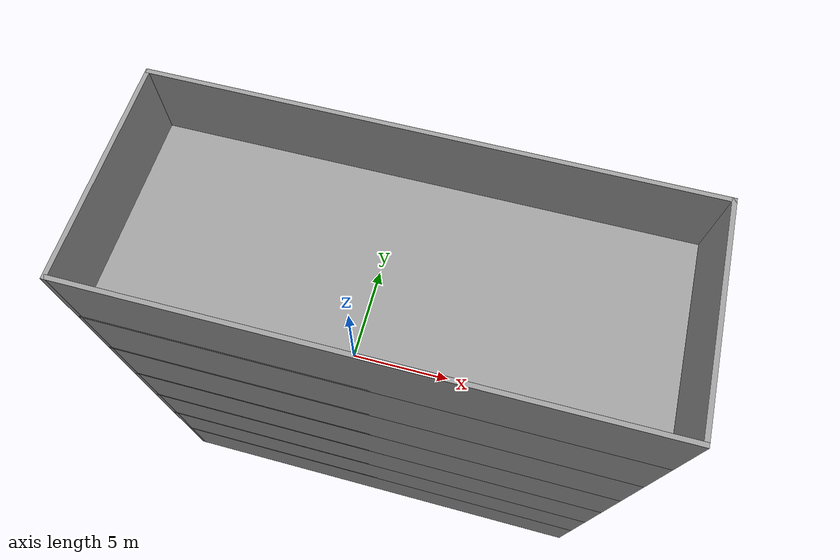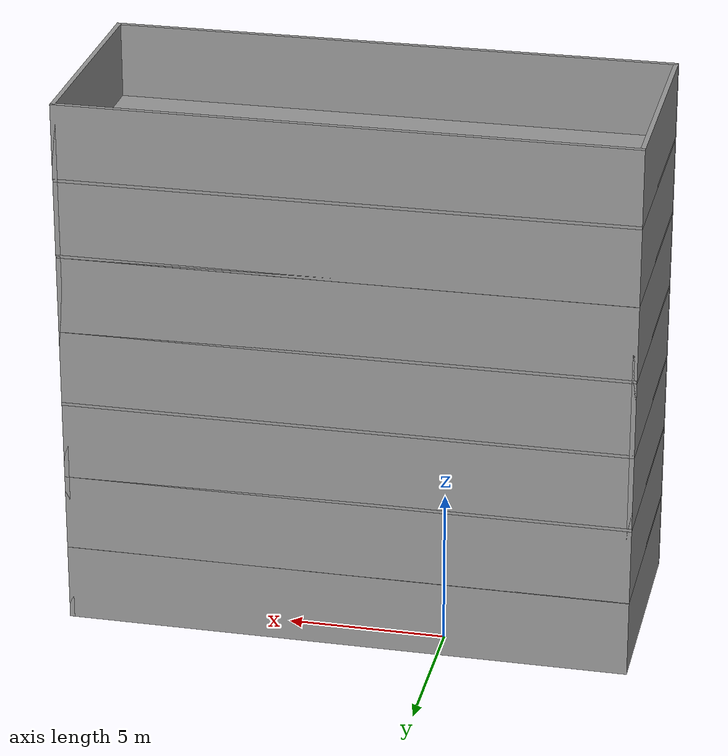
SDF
<?xml version='1.0'?>
<sdf version='1.7'>
  <model name='lab6_task1_world'>
    <pose>2.99344 -2.60477 0 0 -0 0</pose>
    <link name='Floor_10'>
      <collision name='Floor_10_Collision'>
        <geometry>
          <box>
            <size>18 7.5 0.1</size>
          </box>
        </geometry>
        <pose>0 0 0.05 0 -0 0</pose>
      </collision>
      <visual name='Floor_10_Visual'>
        <pose>0 0 0.05 0 -0 0</pose>
        <geometry>
          <box>
            <size>18 7.5 0.1</size>
          </box>
        </geometry>
        <material>
          <script>
            <uri>file://media/materials/scripts/gazebo.material</uri>
            <name>Gazebo/Grey</name>
          </script>
          <ambient>1 1 1 1</ambient>
        </material>
        <meta>
          <layer>6</layer>
        </meta>
      </visual>
      <pose>-0 0 15 0 -0 0</pose>
    </link>
    <link name='Floor_5'>
      <collision name='Floor_5_Collision'>
        <geometry>
          <box>
            <size>18 7.5 0.1</size>
          </box>
        </geometry>
        <pose>0 0 0.05 0 -0 0</pose>
      </collision>
      <visual name='Floor_5_Visual'>
        <pose>0 0 0.05 0 -0 0</pose>
        <geometry>
          <box>
            <size>18 7.5 0.1</size>
          </box>
        </geometry>
        <material>
          <script>
            <uri>file://media/materials/scripts/gazebo.material</uri>
            <name>Gazebo/Grey</name>
          </script>
          <ambient>1 1 1 1</ambient>
        </material>
        <meta>
          <layer>1</layer>
        </meta>
      </visual>
      <pose>-0 0 2.5 0 -0 0</pose>
    </link>
    <link name='Floor_6'>
      <collision name='Floor_6_Collision'>
        <geometry>
          <box>
            <size>18 7.5 0.1</size>
          </box>
        </geometry>
        <pose>0 0 0.05 0 -0 0</pose>
      </collision>
      <visual name='Floor_6_Visual'>
        <pose>0 0 0.05 0 -0 0</pose>
        <geometry>
          <box>
            <size>18 7.5 0.1</size>
          </box>
        </geometry>
        <material>
          <script>
            <uri>file://media/materials/scripts/gazebo.material</uri>
            <name>Gazebo/Grey</name>
          </script>
          <ambient>1 1 1 1</ambient>
        </material>
        <meta>
          <layer>2</layer>
        </meta>
      </visual>
      <pose>-0 0 5 0 -0 0</pose>
    </link>
    <link name='Floor_7'>
      <collision name='Floor_7_Collision'>
        <geometry>
          <box>
            <size>18 7.5 0.1</size>
          </box>
        </geometry>
        <pose>0 0 0.05 0 -0 0</pose>
      </collision>
      <visual name='Floor_7_Visual'>
        <pose>0 0 0.05 0 -0 0</pose>
        <geometry>
          <box>
            <size>18 7.5 0.1</size>
          </box>
        </geometry>
        <material>
          <script>
            <uri>file://media/materials/scripts/gazebo.material</uri>
            <name>Gazebo/Grey</name>
          </script>
          <ambient>1 1 1 1</ambient>
        </material>
        <meta>
          <layer>3</layer>
        </meta>
      </visual>
      <pose>-0 0 7.5 0 -0 0</pose>
    </link>
    <link name='Floor_8'>
      <collision name='Floor_8_Collision'>
        <geometry>
          <box>
            <size>18 7.5 0.1</size>
          </box>
        </geometry>
        <pose>0 0 0.05 0 -0 0</pose>
      </collision>
      <visual name='Floor_8_Visual'>
        <pose>0 0 0.05 0 -0 0</pose>
        <geometry>
          <box>
            <size>18 7.5 0.1</size>
          </box>
        </geometry>
        <material>
          <script>
            <uri>file://media/materials/scripts/gazebo.material</uri>
            <name>Gazebo/Grey</name>
          </script>
          <ambient>1 1 1 1</ambient>
        </material>
        <meta>
          <layer>4</layer>
        </meta>
      </visual>
      <pose>-0 0 10 0 -0 0</pose>
    </link>
    <link name='Floor_9'>
      <collision name='Floor_9_Collision'>
        <geometry>
          <box>
            <size>18 7.5 0.1</size>
          </box>
        </geometry>
        <pose>0 0 0.05 0 -0 0</pose>
      </collision>
      <visual name='Floor_9_Visual'>
        <pose>0 0 0.05 0 -0 0</pose>
        <geometry>
          <box>
            <size>18 7.5 0.1</size>
          </box>
        </geometry>
        <material>
          <script>
            <uri>file://media/materials/scripts/gazebo.material</uri>
            <name>Gazebo/Grey</name>
          </script>
          <ambient>1 1 1 1</ambient>
        </material>
        <meta>
          <layer>5</layer>
        </meta>
      </visual>
      <pose>-0 0 12.5 0 -0 0</pose>
    </link>
    <link name='Wall_10'>
      <collision name='Wall_10_Collision'>
        <geometry>
          <box>
            <size>7.5 0.15 2.5</size>
          </box>
        </geometry>
        <pose>0 0 1.25 0 -0 0</pose>
      </collision>
      <visual name='Wall_10_Visual'>
        <pose>0 0 1.25 0 -0 0</pose>
        <geometry>
          <box>
            <size>7.5 0.15 2.5</size>
          </box>
        </geometry>
        <material>
          <script>
            <uri>file://media/materials/scripts/gazebo.material</uri>
            <name>Gazebo/Grey</name>
          </script>
          <ambient>1 1 1 1</ambient>
        </material>
        <meta>
          <layer>0</layer>
        </meta>
      </visual>
      <pose>-8.925 -0 0 0 -0 1.5708</pose>
    </link>
    <link name='Wall_3'>
      <collision name='Wall_3_Collision'>
        <geometry>
          <box>
            <size>0.16 0.15 2.5</size>
          </box>
        </geometry>
        <pose>0 0 1.25 0 -0 0</pose>
      </collision>
      <visual name='Wall_3_Visual'>
        <pose>0 0 1.25 0 -0 0</pose>
        <geometry>
          <box>
            <size>0.16 0.15 2.5</size>
          </box>
        </geometry>
        <material>
          <script>
            <uri>file://media/materials/scripts/gazebo.material</uri>
            <name>Gazebo/Grey</name>
          </script>
          <ambient>0 0 0 1</ambient>
        </material>
        <meta>
          <layer>0</layer>
        </meta>
      </visual>
      <pose>-1.83214 1.01301 0 0 -0 0</pose>
    </link>
    <link name='Wall_32'>
      <collision name='Wall_32_Collision'>
        <geometry>
          <box>
            <size>18 0.15 2.5</size>
          </box>
        </geometry>
        <pose>0 0 1.25 0 -0 0</pose>
      </collision>
      <visual name='Wall_32_Visual'>
        <pose>0 0 1.25 0 -0 0</pose>
        <geometry>
          <box>
            <size>18 0.15 2.5</size>
          </box>
        </geometry>
        <material>
          <script>
            <uri>file://media/materials/scripts/gazebo.material</uri>
            <name>Gazebo/Grey</name>
          </script>
          <ambient>1 1 1 1</ambient>
        </material>
        <meta>
          <layer>1</layer>
        </meta>
      </visual>
      <pose>-0 3.675 2.5 0 -0 0</pose>
    </link>
    <link name='Wall_33'>
      <collision name='Wall_33_Collision'>
        <geometry>
          <box>
            <size>7.5 0.15 2.5</size>
          </box>
        </geometry>
        <pose>0 0 1.25 0 -0 0</pose>
      </collision>
      <visual name='Wall_33_Visual'>
        <pose>0 0 1.25 0 -0 0</pose>
        <geometry>
          <box>
            <size>7.5 0.15 2.5</size>
          </box>
        </geometry>
        <material>
          <script>
            <uri>file://media/materials/scripts/gazebo.material</uri>
            <name>Gazebo/Grey</name>
          </script>
          <ambient>1 1 1 1</ambient>
        </material>
        <meta>
          <layer>1</layer>
        </meta>
      </visual>
      <pose>8.925 0 2.5 0 -0 -1.5708</pose>
    </link>
    <link name='Wall_34'>
      <collision name='Wall_34_Collision'>
        <geometry>
          <box>
            <size>18 0.15 2.5</size>
          </box>
        </geometry>
        <pose>0 0 1.25 0 -0 0</pose>
      </collision>
      <visual name='Wall_34_Visual'>
        <pose>0 0 1.25 0 -0 0</pose>
        <geometry>
          <box>
            <size>18 0.15 2.5</size>
          </box>
        </geometry>
        <material>
          <script>
            <uri>file://media/materials/scripts/gazebo.material</uri>
            <name>Gazebo/Grey</name>
          </script>
          <ambient>1 1 1 1</ambient>
        </material>
        <meta>
          <layer>1</layer>
        </meta>
      </visual>
      <pose>-0 -3.675 2.5 0 -0 3.14159</pose>
    </link>
    <link name='Wall_35'>
      <collision name='Wall_35_Collision'>
        <geometry>
          <box>
            <size>7.5 0.15 2.5</size>
          </box>
        </geometry>
        <pose>0 0 1.25 0 -0 0</pose>
      </collision>
      <visual name='Wall_35_Visual'>
        <pose>0 0 1.25 0 -0 0</pose>
        <geometry>
          <box>
            <size>7.5 0.15 2.5</size>
          </box>
        </geometry>
        <material>
          <script>
            <uri>file://media/materials/scripts/gazebo.material</uri>
            <name>Gazebo/Grey</name>
          </script>
          <ambient>1 1 1 1</ambient>
        </material>
        <meta>
          <layer>1</layer>
        </meta>
      </visual>
      <pose>-8.925 0 2.5 0 -0 1.5708</pose>
    </link>
    <link name='Wall_36'>
      <collision name='Wall_36_Collision'>
        <geometry>
          <box>
            <size>18 0.15 2.5</size>
          </box>
        </geometry>
        <pose>0 0 1.25 0 -0 0</pose>
      </collision>
      <visual name='Wall_36_Visual'>
        <pose>0 0 1.25 0 -0 0</pose>
        <geometry>
          <box>
            <size>18 0.15 2.5</size>
          </box>
        </geometry>
        <material>
          <script>
            <uri>file://media/materials/scripts/gazebo.material</uri>
            <name>Gazebo/Grey</name>
          </script>
          <ambient>1 1 1 1</ambient>
        </material>
        <meta>
          <layer>2</layer>
        </meta>
      </visual>
      <pose>-0 3.675 5 0 -0 0</pose>
    </link>
    <link name='Wall_37'>
      <collision name='Wall_37_Collision'>
        <geometry>
          <box>
            <size>7.5 0.15 2.5</size>
          </box>
        </geometry>
        <pose>0 0 1.25 0 -0 0</pose>
      </collision>
      <visual name='Wall_37_Visual'>
        <pose>0 0 1.25 0 -0 0</pose>
        <geometry>
          <box>
            <size>7.5 0.15 2.5</size>
          </box>
        </geometry>
        <material>
          <script>
            <uri>file://media/materials/scripts/gazebo.material</uri>
            <name>Gazebo/Grey</name>
          </script>
          <ambient>1 1 1 1</ambient>
        </material>
        <meta>
          <layer>2</layer>
        </meta>
      </visual>
      <pose>8.925 0 5 0 -0 -1.5708</pose>
    </link>
    <link name='Wall_38'>
      <collision name='Wall_38_Collision'>
        <geometry>
          <box>
            <size>18 0.15 2.5</size>
          </box>
        </geometry>
        <pose>0 0 1.25 0 -0 0</pose>
      </collision>
      <visual name='Wall_38_Visual'>
        <pose>0 0 1.25 0 -0 0</pose>
        <geometry>
          <box>
            <size>18 0.15 2.5</size>
          </box>
        </geometry>
        <material>
          <script>
            <uri>file://media/materials/scripts/gazebo.material</uri>
            <name>Gazebo/Grey</name>
          </script>
          <ambient>1 1 1 1</ambient>
        </material>
        <meta>
          <layer>2</layer>
        </meta>
      </visual>
      <pose>-0 -3.675 5 0 -0 3.14159</pose>
    </link>
    <link name='Wall_39'>
      <collision name='Wall_39_Collision'>
        <geometry>
          <box>
            <size>7.5 0.15 2.5</size>
          </box>
        </geometry>
        <pose>0 0 1.25 0 -0 0</pose>
      </collision>
      <visual name='Wall_39_Visual'>
        <pose>0 0 1.25 0 -0 0</pose>
        <geometry>
          <box>
            <size>7.5 0.15 2.5</size>
          </box>
        </geometry>
        <material>
          <script>
            <uri>file://media/materials/scripts/gazebo.material</uri>
            <name>Gazebo/Grey</name>
          </script>
          <ambient>1 1 1 1</ambient>
        </material>
        <meta>
          <layer>2</layer>
        </meta>
      </visual>
      <pose>-8.925 0 5 0 -0 1.5708</pose>
    </link>
    <link name='Wall_40'>
      <collision name='Wall_40_Collision'>
        <geometry>
          <box>
            <size>18 0.15 2.5</size>
          </box>
        </geometry>
        <pose>0 0 1.25 0 -0 0</pose>
      </collision>
      <visual name='Wall_40_Visual'>
        <pose>0 0 1.25 0 -0 0</pose>
        <geometry>
          <box>
            <size>18 0.15 2.5</size>
          </box>
        </geometry>
        <material>
          <script>
            <uri>file://media/materials/scripts/gazebo.material</uri>
            <name>Gazebo/Grey</name>
          </script>
          <ambient>1 1 1 1</ambient>
        </material>
        <meta>
          <layer>3</layer>
        </meta>
      </visual>
      <pose>-0 3.675 7.5 0 -0 0</pose>
    </link>
    <link name='Wall_41'>
      <collision name='Wall_41_Collision'>
        <geometry>
          <box>
            <size>7.5 0.15 2.5</size>
          </box>
        </geometry>
        <pose>0 0 1.25 0 -0 0</pose>
      </collision>
      <visual name='Wall_41_Visual'>
        <pose>0 0 1.25 0 -0 0</pose>
        <geometry>
          <box>
            <size>7.5 0.15 2.5</size>
          </box>
        </geometry>
        <material>
          <script>
            <uri>file://media/materials/scripts/gazebo.material</uri>
            <name>Gazebo/Grey</name>
          </script>
          <ambient>1 1 1 1</ambient>
        </material>
        <meta>
          <layer>3</layer>
        </meta>
      </visual>
      <pose>8.925 0 7.5 0 -0 -1.5708</pose>
    </link>
    <link name='Wall_42'>
      <collision name='Wall_42_Collision'>
        <geometry>
          <box>
            <size>18 0.15 2.5</size>
          </box>
        </geometry>
        <pose>0 0 1.25 0 -0 0</pose>
      </collision>
      <visual name='Wall_42_Visual'>
        <pose>0 0 1.25 0 -0 0</pose>
        <geometry>
          <box>
            <size>18 0.15 2.5</size>
          </box>
        </geometry>
        <material>
          <script>
            <uri>file://media/materials/scripts/gazebo.material</uri>
            <name>Gazebo/Grey</name>
          </script>
          <ambient>1 1 1 1</ambient>
        </material>
        <meta>
          <layer>3</layer>
        </meta>
      </visual>
      <pose>-0 -3.675 7.5 0 -0 3.14159</pose>
    </link>
    <link name='Wall_43'>
      <collision name='Wall_43_Collision'>
        <geometry>
          <box>
            <size>7.5 0.15 2.5</size>
          </box>
        </geometry>
        <pose>0 0 1.25 0 -0 0</pose>
      </collision>
      <visual name='Wall_43_Visual'>
        <pose>0 0 1.25 0 -0 0</pose>
        <geometry>
          <box>
            <size>7.5 0.15 2.5</size>
          </box>
        </geometry>
        <material>
          <script>
            <uri>file://media/materials/scripts/gazebo.material</uri>
            <name>Gazebo/Grey</name>
          </script>
          <ambient>1 1 1 1</ambient>
        </material>
        <meta>
          <layer>3</layer>
        </meta>
      </visual>
      <pose>-8.925 0 7.5 0 -0 1.5708</pose>
    </link>
    <link name='Wall_44'>
      <collision name='Wall_44_Collision'>
        <geometry>
          <box>
            <size>18 0.15 2.5</size>
          </box>
        </geometry>
        <pose>0 0 1.25 0 -0 0</pose>
      </collision>
      <visual name='Wall_44_Visual'>
        <pose>0 0 1.25 0 -0 0</pose>
        <geometry>
          <box>
            <size>18 0.15 2.5</size>
          </box>
        </geometry>
        <material>
          <script>
            <uri>file://media/materials/scripts/gazebo.material</uri>
            <name>Gazebo/Grey</name>
          </script>
          <ambient>1 1 1 1</ambient>
        </material>
        <meta>
          <layer>4</layer>
        </meta>
      </visual>
      <pose>-0 3.675 10 0 -0 0</pose>
    </link>
    <link name='Wall_45'>
      <collision name='Wall_45_Collision'>
        <geometry>
          <box>
            <size>7.5 0.15 2.5</size>
          </box>
        </geometry>
        <pose>0 0 1.25 0 -0 0</pose>
      </collision>
      <visual name='Wall_45_Visual'>
        <pose>0 0 1.25 0 -0 0</pose>
        <geometry>
          <box>
            <size>7.5 0.15 2.5</size>
          </box>
        </geometry>
        <material>
          <script>
            <uri>file://media/materials/scripts/gazebo.material</uri>
            <name>Gazebo/Grey</name>
          </script>
          <ambient>1 1 1 1</ambient>
        </material>
        <meta>
          <layer>4</layer>
        </meta>
      </visual>
      <pose>8.925 0 10 0 -0 -1.5708</pose>
    </link>
    <link name='Wall_46'>
      <collision name='Wall_46_Collision'>
        <geometry>
          <box>
            <size>18 0.15 2.5</size>
          </box>
        </geometry>
        <pose>0 0 1.25 0 -0 0</pose>
      </collision>
      <visual name='Wall_46_Visual'>
        <pose>0 0 1.25 0 -0 0</pose>
        <geometry>
          <box>
            <size>18 0.15 2.5</size>
          </box>
        </geometry>
        <material>
          <script>
            <uri>file://media/materials/scripts/gazebo.material</uri>
            <name>Gazebo/Grey</name>
          </script>
          <ambient>1 1 1 1</ambient>
        </material>
        <meta>
          <layer>4</layer>
        </meta>
      </visual>
      <pose>-0 -3.675 10 0 -0 3.14159</pose>
    </link>
    <link name='Wall_47'>
      <collision name='Wall_47_Collision'>
        <geometry>
          <box>
            <size>7.5 0.15 2.5</size>
          </box>
        </geometry>
        <pose>0 0 1.25 0 -0 0</pose>
      </collision>
      <visual name='Wall_47_Visual'>
        <pose>0 0 1.25 0 -0 0</pose>
        <geometry>
          <box>
            <size>7.5 0.15 2.5</size>
          </box>
        </geometry>
        <material>
          <script>
            <uri>file://media/materials/scripts/gazebo.material</uri>
            <name>Gazebo/Grey</name>
          </script>
          <ambient>1 1 1 1</ambient>
        </material>
        <meta>
          <layer>4</layer>
        </meta>
      </visual>
      <pose>-8.925 0 10 0 -0 1.5708</pose>
    </link>
    <link name='Wall_48'>
      <collision name='Wall_48_Collision'>
        <geometry>
          <box>
            <size>18 0.15 2.5</size>
          </box>
        </geometry>
        <pose>0 0 1.25 0 -0 0</pose>
      </collision>
      <visual name='Wall_48_Visual'>
        <pose>0 0 1.25 0 -0 0</pose>
        <geometry>
          <box>
            <size>18 0.15 2.5</size>
          </box>
        </geometry>
        <material>
          <script>
            <uri>file://media/materials/scripts/gazebo.material</uri>
            <name>Gazebo/Grey</name>
          </script>
          <ambient>1 1 1 1</ambient>
        </material>
        <meta>
          <layer>5</layer>
        </meta>
      </visual>
      <pose>-0 3.675 12.5 0 -0 0</pose>
    </link>
    <link name='Wall_49'>
      <collision name='Wall_49_Collision'>
        <geometry>
          <box>
            <size>7.5 0.15 2.5</size>
          </box>
        </geometry>
        <pose>0 0 1.25 0 -0 0</pose>
      </collision>
      <visual name='Wall_49_Visual'>
        <pose>0 0 1.25 0 -0 0</pose>
        <geometry>
          <box>
            <size>7.5 0.15 2.5</size>
          </box>
        </geometry>
        <material>
          <script>
            <uri>file://media/materials/scripts/gazebo.material</uri>
            <name>Gazebo/Grey</name>
          </script>
          <ambient>1 1 1 1</ambient>
        </material>
        <meta>
          <layer>5</layer>
        </meta>
      </visual>
      <pose>8.925 0 12.5 0 -0 -1.5708</pose>
    </link>
    <link name='Wall_5'>
      <collision name='Wall_5_Collision'>
        <geometry>
          <box>
            <size>18 0.15 2.5</size>
          </box>
        </geometry>
        <pose>0 0 1.25 0 -0 0</pose>
      </collision>
      <visual name='Wall_5_Visual'>
        <pose>0 0 1.25 0 -0 0</pose>
        <geometry>
          <box>
            <size>18 0.15 2.5</size>
          </box>
        </geometry>
        <material>
          <script>
            <uri>file://media/materials/scripts/gazebo.material</uri>
            <name>Gazebo/Grey</name>
          </script>
          <ambient>1 1 1 1</ambient>
        </material>
        <meta>
          <layer>0</layer>
        </meta>
      </visual>
      <pose>-0 3.675 0 0 -0 0</pose>
    </link>
    <link name='Wall_50'>
      <collision name='Wall_50_Collision'>
        <geometry>
          <box>
            <size>18 0.15 2.5</size>
          </box>
        </geometry>
        <pose>0 0 1.25 0 -0 0</pose>
      </collision>
      <visual name='Wall_50_Visual'>
        <pose>0 0 1.25 0 -0 0</pose>
        <geometry>
          <box>
            <size>18 0.15 2.5</size>
          </box>
        </geometry>
        <material>
          <script>
            <uri>file://media/materials/scripts/gazebo.material</uri>
            <name>Gazebo/Grey</name>
          </script>
          <ambient>1 1 1 1</ambient>
        </material>
        <meta>
          <layer>5</layer>
        </meta>
      </visual>
      <pose>-0 -3.675 12.5 0 -0 3.14159</pose>
    </link>
    <link name='Wall_51'>
      <collision name='Wall_51_Collision'>
        <geometry>
          <box>
            <size>7.5 0.15 2.5</size>
          </box>
        </geometry>
        <pose>0 0 1.25 0 -0 0</pose>
      </collision>
      <visual name='Wall_51_Visual'>
        <pose>0 0 1.25 0 -0 0</pose>
        <geometry>
          <box>
            <size>7.5 0.15 2.5</size>
          </box>
        </geometry>
        <material>
          <script>
            <uri>file://media/materials/scripts/gazebo.material</uri>
            <name>Gazebo/Grey</name>
          </script>
          <ambient>1 1 1 1</ambient>
        </material>
        <meta>
          <layer>5</layer>
        </meta>
      </visual>
      <pose>-8.925 0 12.5 0 -0 1.5708</pose>
    </link>
    <link name='Wall_52'>
      <collision name='Wall_52_Collision'>
        <geometry>
          <box>
            <size>18 0.15 2.5</size>
          </box>
        </geometry>
        <pose>0 0 1.25 0 -0 0</pose>
      </collision>
      <visual name='Wall_52_Visual'>
        <pose>0 0 1.25 0 -0 0</pose>
        <geometry>
          <box>
            <size>18 0.15 2.5</size>
          </box>
        </geometry>
        <material>
          <script>
            <uri>file://media/materials/scripts/gazebo.material</uri>
            <name>Gazebo/Grey</name>
          </script>
          <ambient>1 1 1 1</ambient>
        </material>
        <meta>
          <layer>6</layer>
        </meta>
      </visual>
      <pose>-0 3.675 15 0 -0 0</pose>
    </link>
    <link name='Wall_53'>
      <collision name='Wall_53_Collision'>
        <geometry>
          <box>
            <size>7.5 0.15 2.5</size>
          </box>
        </geometry>
        <pose>0 0 1.25 0 -0 0</pose>
      </collision>
      <visual name='Wall_53_Visual'>
        <pose>0 0 1.25 0 -0 0</pose>
        <geometry>
          <box>
            <size>7.5 0.15 2.5</size>
          </box>
        </geometry>
        <material>
          <script>
            <uri>file://media/materials/scripts/gazebo.material</uri>
            <name>Gazebo/Grey</name>
          </script>
          <ambient>1 1 1 1</ambient>
        </material>
        <meta>
          <layer>6</layer>
        </meta>
      </visual>
      <pose>8.925 0 15 0 -0 -1.5708</pose>
    </link>
    <link name='Wall_54'>
      <collision name='Wall_54_Collision'>
        <geometry>
          <box>
            <size>18 0.15 2.5</size>
          </box>
        </geometry>
        <pose>0 0 1.25 0 -0 0</pose>
      </collision>
      <visual name='Wall_54_Visual'>
        <pose>0 0 1.25 0 -0 0</pose>
        <geometry>
          <box>
            <size>18 0.15 2.5</size>
          </box>
        </geometry>
        <material>
          <script>
            <uri>file://media/materials/scripts/gazebo.material</uri>
            <name>Gazebo/Grey</name>
          </script>
          <ambient>1 1 1 1</ambient>
        </material>
        <meta>
          <layer>6</layer>
        </meta>
      </visual>
      <pose>-0 -3.675 15 0 -0 3.14159</pose>
    </link>
    <link name='Wall_55'>
      <collision name='Wall_55_Collision'>
        <geometry>
          <box>
            <size>7.5 0.15 2.5</size>
          </box>
        </geometry>
        <pose>0 0 1.25 0 -0 0</pose>
      </collision>
      <visual name='Wall_55_Visual'>
        <pose>0 0 1.25 0 -0 0</pose>
        <geometry>
          <box>
            <size>7.5 0.15 2.5</size>
          </box>
        </geometry>
        <material>
          <script>
            <uri>file://media/materials/scripts/gazebo.material</uri>
            <name>Gazebo/Grey</name>
          </script>
          <ambient>1 1 1 1</ambient>
        </material>
        <meta>
          <layer>6</layer>
        </meta>
      </visual>
      <pose>-8.925 0 15 0 -0 1.5708</pose>
    </link>
    <link name='Wall_8'>
      <collision name='Wall_8_Collision'>
        <geometry>
          <box>
            <size>7.5 0.15 2.5</size>
          </box>
        </geometry>
        <pose>0 0 1.25 0 -0 0</pose>
      </collision>
      <visual name='Wall_8_Visual'>
        <pose>0 0 1.25 0 -0 0</pose>
        <geometry>
          <box>
            <size>7.5 0.15 2.5</size>
          </box>
        </geometry>
        <material>
          <script>
            <uri>file://media/materials/scripts/gazebo.material</uri>
            <name>Gazebo/Grey</name>
          </script>
          <ambient>1 1 1 1</ambient>
        </material>
        <meta>
          <layer>0</layer>
        </meta>
      </visual>
      <pose>8.925 -0 0 0 -0 -1.5708</pose>
    </link>
    <link name='Wall_9'>
      <collision name='Wall_9_Collision'>
        <geometry>
          <box>
            <size>18 0.15 2.5</size>
          </box>
        </geometry>
        <pose>0 0 1.25 0 -0 0</pose>
      </collision>
      <visual name='Wall_9_Visual'>
        <pose>0 0 1.25 0 -0 0</pose>
        <geometry>
          <box>
            <size>18 0.15 2.5</size>
          </box>
        </geometry>
        <material>
          <script>
            <uri>file://media/materials/scripts/gazebo.material</uri>
            <name>Gazebo/Grey</name>
          </script>
          <ambient>1 1 1 1</ambient>
        </material>
        <meta>
          <layer>0</layer>
        </meta>
      </visual>
      <pose>-0 -3.675 0 0 -0 3.14159</pose>
    </link>
    <static>1</static>
  </model>
</sdf>
